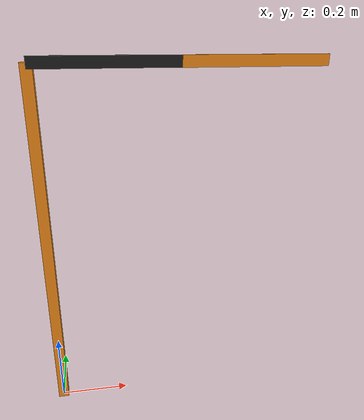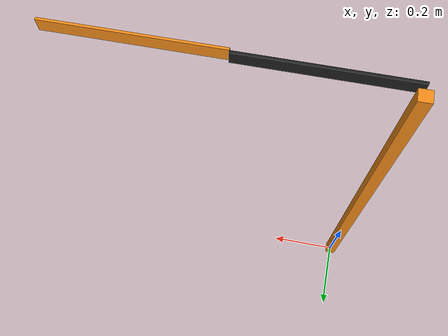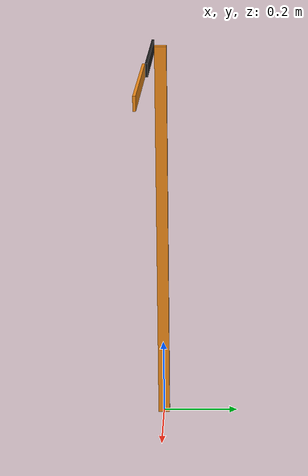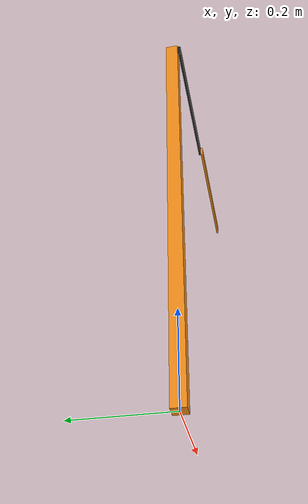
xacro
<?xml version="1.0"?>
<!-- Acrobot -->
<robot name="acrobot" xmlns:xacro="http://www.ros.org/wiki/xacro">

  <!-- Constants for robot dimensions -->
  <xacro:property name="PI" value="3.1415926535897931"/>
  <xacro:property name="mass" value="1" /> <!-- arbitrary value for mass -->
  <xacro:property name="width" value="0.03" /> <!-- Square dimensions (widthxwidth) of beams -->
  <xacro:property name="depth" value="0.006"/>
  <xacro:property name="height1" value="1" /> <!-- Link 1 -->
  <xacro:property name="height2" value="0.37779" /> <!-- Link 2 -->
  <xacro:property name="mass2" value="0.171" /> <!-- Link 2 -->
  <xacro:property name="lc2" value="0.27948" />
  <xacro:property name="Ic2" value="0.0027273" />
  <xacro:property name="height3" value="0.3882" /> <!-- Link 3 -->
  <xacro:property name="mass3" value="0.289" /> <!-- Link 3 -->
  <xacro:property name="lc3" value="0.32843" />
  <xacro:property name="Ic3" value="0.003348"/>
  <xacro:property name="camera_link" value="0.05" /> <!-- Size of square 'camera' box -->
  <xacro:property name="axel_offset" value="0.0" /> <!-- Space btw top of beam and the each joint -->

  <!-- Import all Gazebo-customization elements, including Gazebo colors -->
  <xacro:include filename="$(find acrobot_description)/urdf/acrobot.gazebo" />
  <!-- Import Rviz colors -->
  <xacro:include filename="$(find acrobot_description)/urdf/materials.xacro" />

  <!-- Used for fixing robot to Gazebo 'base_link' -->
  <link name="world"/>

  <joint name="fixed" type="fixed">
    <parent link="world"/>
    <child link="link1"/>
  </joint>

  <!-- Base Link -->
  <link name="link1">
    <collision>
      <origin xyz="0 0 ${height1/2}" rpy="0 0 0"/>
      <geometry>
	<box size="${width} ${width} ${height1}"/>
      </geometry>
    </collision>

    <visual>
      <origin xyz="0 0 ${height1/2}" rpy="0 0 0"/>
      <geometry>
	<box size="${width} ${width} ${height1}"/>
      </geometry>
      <material name="orange"/>
    </visual>

    <inertial>
      <origin xyz="0 0 ${height1/2}" rpy="0 0 0"/>
      <mass value="${mass}"/>
      <inertia
	  ixx="${mass / 12.0 * (width*width + height1*height1)}" ixy="0.0" ixz="0.0"
	  iyy="${mass / 12.0 * (height1*height1 + width*width)}" iyz="0.0"
	  izz="${mass / 12.0 * (width*width + width*width)}"/>
    </inertial>
  </link>

  <joint name="joint1" type="continuous">
    <parent link="link1"/>
    <child link="link2"/>
    <origin xyz="0 -${width/2 + depth/2} ${height1 - axel_offset}" rpy="0 ${PI/2} 0"/>
    <axis xyz="0 1 0"/>
    <dynamics damping="2" friction="0.5"/>
  </joint>

  <!-- Middle Link -->
  <link name="link2">
    <collision>
      <origin xyz="0 0 ${height2/2 - axel_offset}" rpy="0 0 0"/>
      <geometry>
	<box size="${width} ${width} ${height2}"/>
      </geometry>
    </collision>

    <visual>
      <origin xyz="0 0 ${height2/2 - axel_offset}" rpy="0 0 0"/>
      <geometry>
	<box size="${width} ${depth} ${height2}"/>
      </geometry>
      <material name="black"/>
    </visual>

    <inertial>
      <origin xyz="0 0 ${lc2}" rpy="0 0 0"/>
      <mass value="${mass2}"/>
      <inertia
	  ixx="${mass / 12.0 * (width*width + height2*height2)}" ixy="0.0" ixz="0.0"
	  iyy="${Ic2}" iyz="0.0"
	  izz="${mass / 12.0 * (width*width + width*width)}"/>
    </inertial>
  </link>

  <joint name="joint2" type="continuous">
    <parent link="link2"/>
    <child link="link3"/>
    <origin xyz="0 -${depth} ${height2 - axel_offset*2}" rpy="0 0 0"/>
    <axis xyz="0 1 0"/>
    <dynamics damping="2" friction="0.5"/>
  </joint>

  <!-- Top Link -->
  <link name="link3">
    <collision>
      <origin xyz="0 0 ${height3/2 - axel_offset}" rpy="0 0 0"/>
      <geometry>
	<box size="${width} ${depth} ${height3}"/>
      </geometry>
    </collision>

    <visual>
      <origin xyz="0 0 ${height3/2 - axel_offset}" rpy="0 0 0"/>
      <geometry>
	<box size="${width} ${depth} ${height3}"/>
      </geometry>
      <material name="orange"/>
    </visual>

    <inertial>
      <origin xyz="0 0 ${lc3}" rpy="0 0 0"/>
      <mass value="${mass3}"/>
      <inertia
	  ixx="${mass / 12.0 * (width*width + height3*height3)}" ixy="0.0" ixz="0.0"
	  iyy="${Ic3}" iyz="0.0"
	  izz="${mass / 12.0 * (width*width + width*width)}"/>
    </inertial>
  </link>

  <transmission name="tran1">
    <type>transmission_interface/SimpleTransmission</type>
    <joint name="joint1">
      <hardwareInterface>hardware_interface/EffortJointInterface</hardwareInterface>
    </joint>
    <actuator name="motor1">
      <hardwareInterface>hardware_interface/EffortJointInterface</hardwareInterface>
      <mechanicalReduction>1</mechanicalReduction>
    </actuator>
  </transmission>

  <transmission name="tran2">
    <type>transmission_interface/SimpleTransmission</type>
    <joint name="joint2">
      <hardwareInterface>hardware_interface/EffortJointInterface</hardwareInterface>
    </joint>
    <actuator name="motor2">
      <hardwareInterface>hardware_interface/EffortJointInterface</hardwareInterface>
      <mechanicalReduction>1</mechanicalReduction>
    </actuator>
  </transmission>

</robot>
